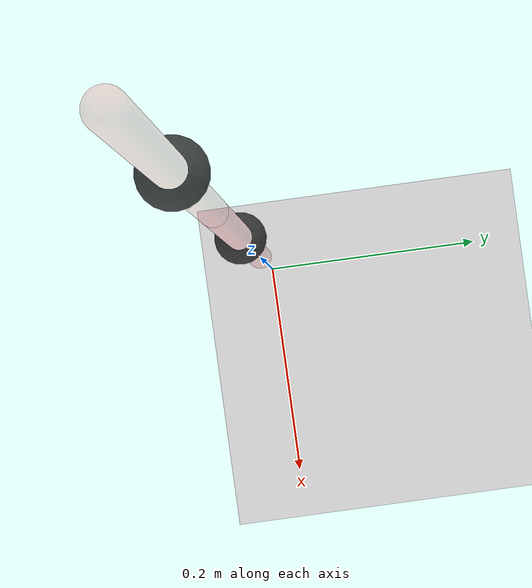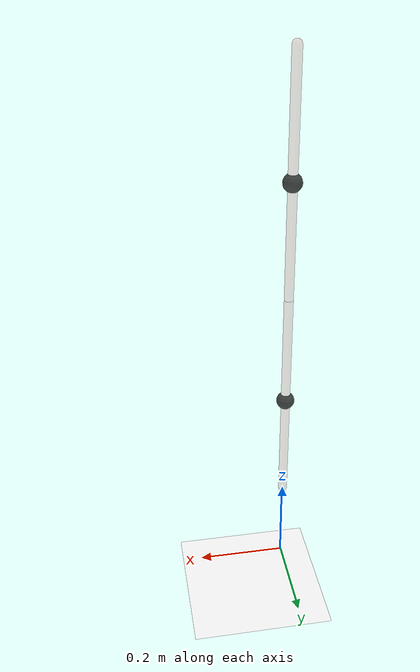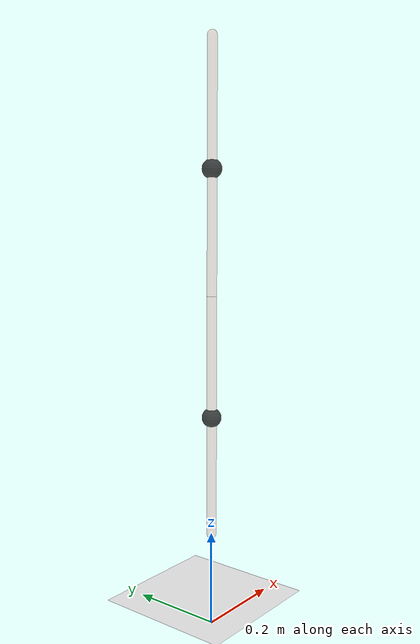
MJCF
<mujoco model="acrobat-nofric">
    <!-- Using Runge Kutta 4th order for global optimality -->
    <option integrator="RK4" timestep="0.002"/>
    <compiler angle="degree" coordinate="local"/>

    <asset>
      <texture name="grid" type="2d" builtin="checker" width="512" height="512" rgb1="0.8 0.9 1" rgb2="0.7 0.8 0.9"/>
      <material name="mat" texture="grid" texrepeat="6 6" specular="0.3" shininess="0.5"/>
    </asset>

    <default>
        <joint damping="0"/>
        <geom friction="0 0 0"/>
    </default>

    <worldbody>
        <geom name="floor" type="plane" size="50 50 1" material="mat" rgba="0.95 0.95 0.95 1"/>

        <body name="acrobat" pos = "0 0 1.2">
            <body name="link1" pos= "0 0 0">
                <joint name="link1_joint" type="hinge" axis="0 -1 0" limited="false"/>
                <geom name="link1" type="capsule" fromto="0 0 0 0 0 -0.5" size="0.01" mass="0.0000" rgba="0.9 0.2 0.2 0.2"/>
                <body name="point_mass1" pos="0 0 -0.25">
                    <geom name="link1_point_mass" type="sphere" size="0.02" mass="1" rgba="0.1 0.1 0.1 0.8"/>
                </body>

                <body name="link2" pos="0 0 -0.5">
                    <joint name="link2_joint" type="hinge" axis="0 -1 0" limited="false"/>
                    <geom name="link2" type="capsule" fromto="0 0 0 0 0 -0.5" size="0.01" mass="0.0000" rgba="0.9 0.2 0.2 0.2"/>
                    <body name="point_mass2" pos="0 0 -0.25">
                        <geom name="link2_point_mass" type="sphere" size="0.02" mass="1" rgba="0.1 0.1 0.1 0.8"/>
                    </body>
                </body>
            </body>

        </body>

    </worldbody>

    <actuator>
        <motor name="torque" joint="link2_joint" gear="0.5" ctrllimited="true" ctrlrange="-10 10"/>
    </actuator>

    <sensor>
        <jointpos name="theta1" joint="link1_joint"/>
        <jointvel name="theta1_dot" joint = "link1_joint"/>
        <jointpos name="theta2" joint="link2_joint"/>
        <jointvel name="theta2_dot" joint="link2_joint"/>
    </sensor>
</mujoco>
